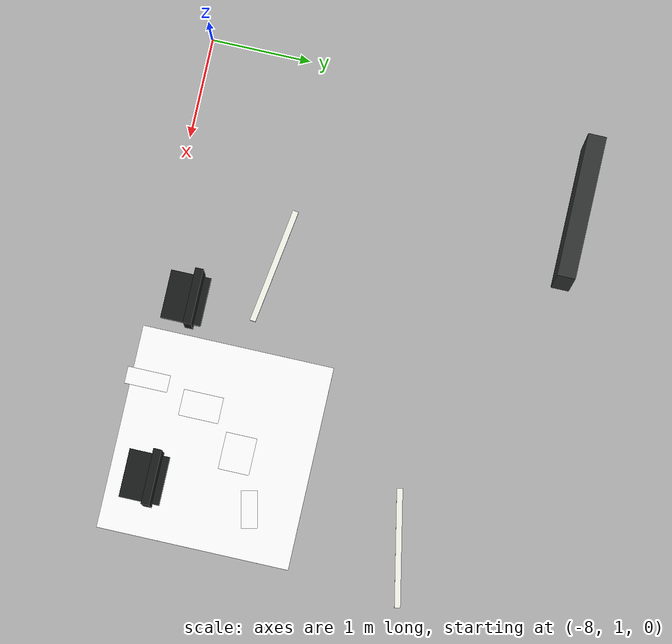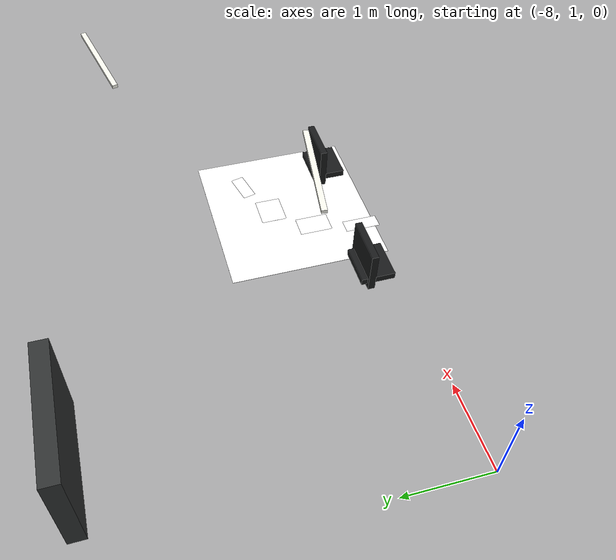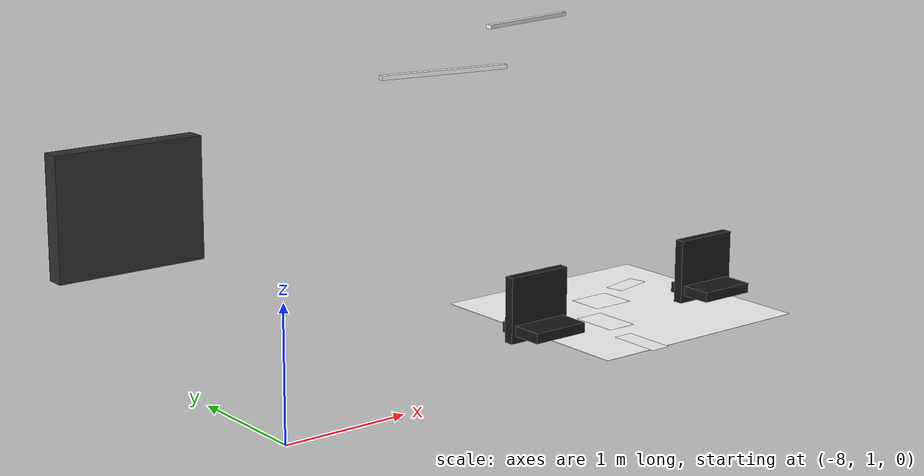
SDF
<sdf version="1.10">
 <world name="kookmin_xycar_track">
  <model name="white_line_cad_18">
   <static>true</static>
   <pose>-3.6585278511047363 1.5645300149917603 0.017400000244379044 0 0 0</pose>
   <link name="white_line_cad_18_surface">
    <visual name="visual">
     <cast_shadows>false</cast_shadows>
     <geometry><plane><normal>0 0 1</normal><size>1.1399999999999999 1.1299999999999999</size></plane></geometry>
     <material>
      <ambient>1 1 1 1</ambient>
      <diffuse>1 1 1 1</diffuse>
      <emissive>0.949000001 0.949000001 0.925499976 1</emissive>
      <pbr>
       <metal>
        <albedo_map>file://media/materials/textures/kookmin_white_line_cad_18.png</albedo_map>
        <roughness>1</roughness>
        <metalness>0</metalness>
       </metal>
      </pbr>
     </material>
    </visual>
    <inertial>
     <mass>1</mass>
     <inertia><ixx>1</ixx><ixy>0</ixy><ixz>0</ixz><iyy>1</iyy><iyz>0</iyz><izz>1</izz></inertia>
    </inertial>
   </link>
  </model>
  <model name="white_line_cad_19">
   <static>true</static>
   <pose>-4.0487060546875 1.9379400014877319 0.017599999904632568 0 0 0</pose>
   <link name="white_line_cad_19_surface">
    <visual name="visual">
     <cast_shadows>false</cast_shadows>
     <geometry><plane><normal>0 0 1</normal><size>2.04 1.9299999999999999</size></plane></geometry>
     <material>
      <ambient>1 1 1 1</ambient>
      <diffuse>1 1 1 1</diffuse>
      <emissive>0.949000001 0.949000001 0.925499976 1</emissive>
      <pbr>
       <metal>
        <albedo_map>file://media/materials/textures/kookmin_white_line_cad_19.png</albedo_map>
        <roughness>1</roughness>
        <metalness>0</metalness>
       </metal>
      </pbr>
     </material>
    </visual>
    <inertial>
     <mass>1</mass>
     <inertia><ixx>1</ixx><ixy>0</ixy><ixz>0</ixz><iyy>1</iyy><iyz>0</iyz><izz>1</izz></inertia>
    </inertial>
   </link>
  </model>
  <model name="yellow_centerline_dash_011">
   <static>true</static>
   <pose>-3.5250000953674316 2.4000000953674316 0.028500000014901161 0 0 0.22944573427692086</pose>
   <link name="yellow_centerline_dash_011_surface">
    <visual name="visual">
     <cast_shadows>false</cast_shadows>
     <geometry><plane><normal>0 0 1</normal><size>0.37 0.16</size></plane></geometry>
     <material>
      <ambient>1 1 1 1</ambient>
      <diffuse>1 1 1 1</diffuse>
      <emissive>1 0.768599987 0.0471000001 1</emissive>
      <pbr>
       <metal>
        <albedo_map>file://media/materials/textures/kookmin_yellow_centerline_dash_011.png</albedo_map>
        <roughness>1</roughness>
        <metalness>0</metalness>
       </metal>
      </pbr>
     </material>
    </visual>
    <inertial>
     <mass>1</mass>
     <inertia><ixx>1</ixx><ixy>0</ixy><ixz>0</ixz><iyy>1</iyy><iyz>0</iyz><izz>1</izz></inertia>
    </inertial>
   </link>
  </model>
  <model name="yellow_centerline_dash_013">
   <static>true</static>
   <pose>-4.0350000000000001 2.165 0.028899999999999999 0 0 0</pose>
   <link name="yellow_centerline_dash_013_surface">
    <visual name="visual">
     <cast_shadows>false</cast_shadows>
     <geometry><plane><normal>0 0 1</normal><size>0.37 0.31</size></plane></geometry>
     <material>
      <ambient>1 1 1 1</ambient>
      <diffuse>1 1 1 1</diffuse>
      <emissive>1 0.768599987 0.0471000001 1</emissive>
      <pbr>
       <metal>
        <albedo_map>file://media/materials/textures/kookmin_yellow_centerline_dash_013.png</albedo_map>
        <roughness>1</roughness>
        <metalness>0</metalness>
       </metal>
      </pbr>
     </material>
    </visual>
    <inertial>
     <mass>1</mass>
     <inertia><ixx>1</ixx><ixy>0</ixy><ixz>0</ixz><iyy>1</iyy><iyz>0</iyz><izz>1</izz></inertia>
    </inertial>
   </link>
  </model>
  <model name="yellow_centerline_dash_014">
   <static>true</static>
   <pose>-4.4100000000000001 1.71 0.029100000000000001 0 0 0</pose>
   <link name="yellow_centerline_dash_014_surface">
    <visual name="visual">
     <cast_shadows>false</cast_shadows>
     <geometry><plane><normal>0 0 1</normal><size>0.26000000000000001 0.40000000000000002</size></plane></geometry>
     <material>
      <ambient>1 1 1 1</ambient>
      <diffuse>1 1 1 1</diffuse>
      <emissive>1 0.768599987 0.0471000001 1</emissive>
      <pbr>
       <metal>
        <albedo_map>file://media/materials/textures/kookmin_yellow_centerline_dash_014.png</albedo_map>
        <roughness>1</roughness>
        <metalness>0</metalness>
       </metal>
      </pbr>
     </material>
    </visual>
    <inertial>
     <mass>1</mass>
     <inertia><ixx>1</ixx><ixy>0</ixy><ixz>0</ixz><iyy>1</iyy><iyz>0</iyz><izz>1</izz></inertia>
    </inertial>
   </link>
  </model>
  <model name="yellow_centerline_dash_016">
   <static>true</static>
   <pose>-4.5549999999999997 1.135 0.029499999999999998 0 0 0</pose>
   <link name="yellow_centerline_dash_016_surface">
    <visual name="visual">
     <cast_shadows>false</cast_shadows>
     <geometry><plane><normal>0 0 1</normal><size>0.17000000000000001 0.42999999999999999</size></plane></geometry>
     <material>
      <ambient>1 1 1 1</ambient>
      <diffuse>1 1 1 1</diffuse>
      <emissive>1 0.768599987 0.0471000001 1</emissive>
      <pbr>
       <metal>
        <albedo_map>file://media/materials/textures/kookmin_yellow_centerline_dash_016.png</albedo_map>
        <roughness>1</roughness>
        <metalness>0</metalness>
       </metal>
      </pbr>
     </material>
    </visual>
    <inertial>
     <mass>1</mass>
     <inertia><ixx>1</ixx><ixy>0</ixy><ixz>0</ixz><iyy>1</iyy><iyz>0</iyz><izz>1</izz></inertia>
    </inertial>
   </link>
  </model>
  <model name="room_black_display_stand">
   <static>true</static>
   <pose>-7.0000 4.9000 0.7500 0.000000 0.000000 0.000000</pose>
   <link name="black_display_stand">
    <visual name="visual">
     <geometry><box><size>1.4000 0.1800 1.1000</size></box></geometry>
     <material><ambient>0.1882 0.1961 0.1961 1</ambient><diffuse>0.1882 0.1961 0.1961 1</diffuse></material>
    </visual>
   </link>
  </model>
  <model name="room_chair_back_0">
   <static>true</static>
   <pose>-5.4000 1.4300 0.4200 0.000000 0.000000 0.000000</pose>
   <link name="chair_back_0">
    <visual name="visual">
     <geometry><box><size>0.5500 0.0800 0.5200</size></box></geometry>
     <material><ambient>0.0941 0.0980 0.1020 1</ambient><diffuse>0.0941 0.0980 0.1020 1</diffuse></material>
    </visual>
   </link>
  </model>
  <model name="room_chair_seat_0">
   <static>true</static>
   <pose>-5.4000 1.3400 0.2600 0.000000 0.000000 0.000000</pose>
   <link name="chair_seat_0">
    <visual name="visual">
     <geometry><box><size>0.4800 0.4000 0.0800</size></box></geometry>
     <material><ambient>0.0941 0.0980 0.1020 1</ambient><diffuse>0.0941 0.0980 0.1020 1</diffuse></material>
    </visual>
   </link>
  </model>
  <model name="room_chair_back_1">
   <static>true</static>
   <pose>-3.6000 1.4300 0.4200 0.000000 0.000000 0.000000</pose>
   <link name="chair_back_1">
    <visual name="visual">
     <geometry><box><size>0.5500 0.0800 0.5200</size></box></geometry>
     <material><ambient>0.0941 0.0980 0.1020 1</ambient><diffuse>0.0941 0.0980 0.1020 1</diffuse></material>
    </visual>
   </link>
  </model>
  <model name="room_chair_seat_1">
   <static>true</static>
   <pose>-3.6000 1.3400 0.2600 0.000000 0.000000 0.000000</pose>
   <link name="chair_seat_1">
    <visual name="visual">
     <geometry><box><size>0.4800 0.4000 0.0800</size></box></geometry>
     <material><ambient>0.0941 0.0980 0.1020 1</ambient><diffuse>0.0941 0.0980 0.1020 1</diffuse></material>
    </visual>
   </link>
  </model>
  <model name="room_ceiling_light_1">
   <static>true</static>
   <pose>-5.7000 2.2000 2.1500 0.000000 0.000000 -0.150000</pose>
   <link name="ceiling_light_1">
    <visual name="visual">
     <geometry><box><size>1.1000 0.0550 0.0350</size></box></geometry>
     <material><ambient>0.9608 0.9608 0.9216 1</ambient><diffuse>0.9608 0.9608 0.9216 1</diffuse></material>
    </visual>
   </link>
  </model>
  <model name="room_ceiling_light_2">
   <static>true</static>
   <pose>-3.4000 3.9000 2.1500 0.000000 0.000000 0.200000</pose>
   <link name="ceiling_light_2">
    <visual name="visual">
     <geometry><box><size>1.1000 0.0550 0.0350</size></box></geometry>
     <material><ambient>0.9608 0.9608 0.9216 1</ambient><diffuse>0.9608 0.9608 0.9216 1</diffuse></material>
    </visual>
   </link>
  </model>
 </world>
</sdf>
